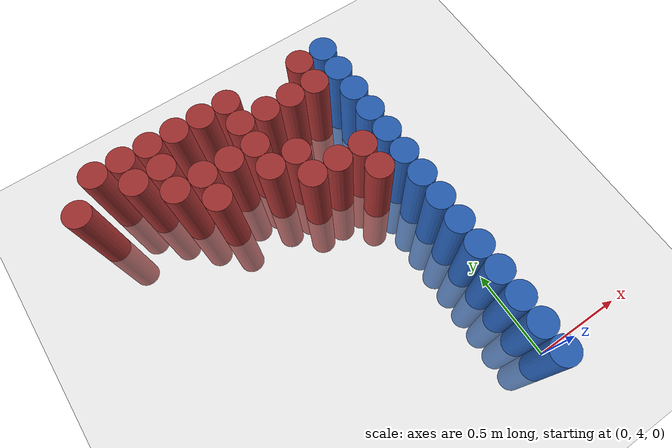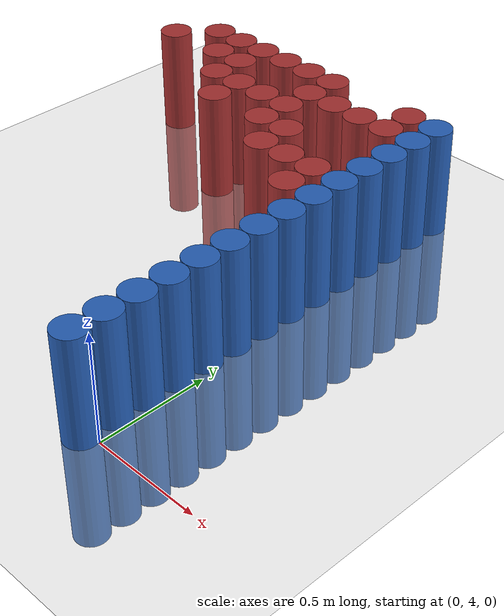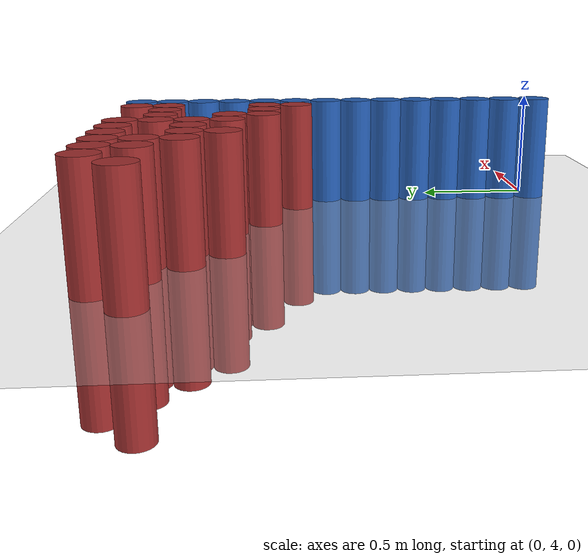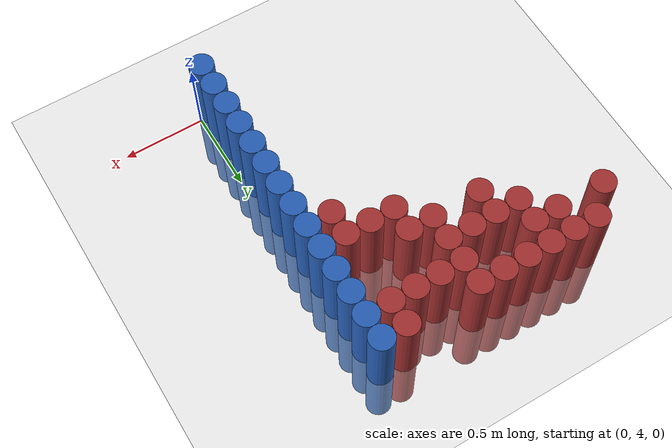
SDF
<sdf version="1.6">
 <world name="default">
  <model name="ground_plane">
   <static>1</static>
   <link name="link">
    <collision name="collision">
     <geometry><plane><normal>0 0 1</normal><size>100 100</size></plane></geometry>
     <surface><friction><ode><mu>100</mu><mu2>50</mu2></ode></friction></surface>
    </collision>
    <visual name="visual">
     <cast_shadows>0</cast_shadows>
     <geometry><plane><normal>0 0 1</normal><size>100 100</size></plane></geometry>
     <material>
      <script><uri>file://media/materials/scripts/gazebo.material</uri><name>Gazebo/Grey</name></script>
     </material>
    </visual>
   </link>
  </model>
  <model name="unit_cylinder_80">
   <static>1</static>
   <pose>-0.075000 3.975000 0.000000 0.000000 0.000000 0.000000</pose>
   <link name="link">
    <inertial>
     <mass>1</mass>
     <inertia><ixx>0.145833</ixx><ixy>0</ixy><ixz>0</ixz><iyy>0.145833</iyy><iyz>0</iyz><izz>0.125</izz></inertia>
    </inertial>
    <collision name="collision">
     <geometry><cylinder><radius>0.075000</radius><length>1</length></cylinder></geometry>
    </collision>
    <visual name="visual">
     <geometry><cylinder><radius>0.075000</radius><length>1</length></cylinder></geometry>
     <material>
      <ambient>0.152000 0.379000 0.720000 1</ambient>
      <diffuse>0.152000 0.379000 0.720000 1</diffuse>
     </material>
     <material>
      <script><name>Gazebo/Grey</name><uri>file://media/materials/scripts/gazebo.material</uri></script>
     </material>
    </visual>
    <sensor name="sensor_contact" type="contact"><contact><collision>collision</collision></contact></sensor>
   </link>
   <plugin filename="gz-sim-touchplugin-system" name="gz::sim::systems::TouchPlugin">
    <target>robot</target>
    <namespace>robot</namespace>
    <time>0.001</time>
    <enabled>true</enabled>
   </plugin>
  </model>
  <model name="unit_cylinder_82">
   <static>1</static>
   <pose>-0.075000 4.125000 0.000000 0.000000 0.000000 0.000000</pose>
   <link name="link">
    <inertial>
     <mass>1</mass>
     <inertia><ixx>0.145833</ixx><ixy>0</ixy><ixz>0</ixz><iyy>0.145833</iyy><iyz>0</iyz><izz>0.125</izz></inertia>
    </inertial>
    <collision name="collision">
     <geometry><cylinder><radius>0.075000</radius><length>1</length></cylinder></geometry>
    </collision>
    <visual name="visual">
     <geometry><cylinder><radius>0.075000</radius><length>1</length></cylinder></geometry>
     <material>
      <ambient>0.152000 0.379000 0.720000 1</ambient>
      <diffuse>0.152000 0.379000 0.720000 1</diffuse>
     </material>
     <material>
      <script><name>Gazebo/Grey</name><uri>file://media/materials/scripts/gazebo.material</uri></script>
     </material>
    </visual>
    <sensor name="sensor_contact" type="contact"><contact><collision>collision</collision></contact></sensor>
   </link>
   <plugin filename="gz-sim-touchplugin-system" name="gz::sim::systems::TouchPlugin">
    <target>robot</target>
    <namespace>robot</namespace>
    <time>0.001</time>
    <enabled>true</enabled>
   </plugin>
  </model>
  <model name="unit_cylinder_84">
   <static>1</static>
   <pose>-0.075000 4.275000 0.000000 0.000000 0.000000 0.000000</pose>
   <link name="link">
    <inertial>
     <mass>1</mass>
     <inertia><ixx>0.145833</ixx><ixy>0</ixy><ixz>0</ixz><iyy>0.145833</iyy><iyz>0</iyz><izz>0.125</izz></inertia>
    </inertial>
    <collision name="collision">
     <geometry><cylinder><radius>0.075000</radius><length>1</length></cylinder></geometry>
    </collision>
    <visual name="visual">
     <geometry><cylinder><radius>0.075000</radius><length>1</length></cylinder></geometry>
     <material>
      <ambient>0.152000 0.379000 0.720000 1</ambient>
      <diffuse>0.152000 0.379000 0.720000 1</diffuse>
     </material>
     <material>
      <script><name>Gazebo/Grey</name><uri>file://media/materials/scripts/gazebo.material</uri></script>
     </material>
    </visual>
    <sensor name="sensor_contact" type="contact"><contact><collision>collision</collision></contact></sensor>
   </link>
   <plugin filename="gz-sim-touchplugin-system" name="gz::sim::systems::TouchPlugin">
    <target>robot</target>
    <namespace>robot</namespace>
    <time>0.001</time>
    <enabled>true</enabled>
   </plugin>
  </model>
  <model name="unit_cylinder_86">
   <static>1</static>
   <pose>-0.075000 4.425000 0.000000 0.000000 0.000000 0.000000</pose>
   <link name="link">
    <inertial>
     <mass>1</mass>
     <inertia><ixx>0.145833</ixx><ixy>0</ixy><ixz>0</ixz><iyy>0.145833</iyy><iyz>0</iyz><izz>0.125</izz></inertia>
    </inertial>
    <collision name="collision">
     <geometry><cylinder><radius>0.075000</radius><length>1</length></cylinder></geometry>
    </collision>
    <visual name="visual">
     <geometry><cylinder><radius>0.075000</radius><length>1</length></cylinder></geometry>
     <material>
      <ambient>0.152000 0.379000 0.720000 1</ambient>
      <diffuse>0.152000 0.379000 0.720000 1</diffuse>
     </material>
     <material>
      <script><name>Gazebo/Grey</name><uri>file://media/materials/scripts/gazebo.material</uri></script>
     </material>
    </visual>
    <sensor name="sensor_contact" type="contact"><contact><collision>collision</collision></contact></sensor>
   </link>
   <plugin filename="gz-sim-touchplugin-system" name="gz::sim::systems::TouchPlugin">
    <target>robot</target>
    <namespace>robot</namespace>
    <time>0.001</time>
    <enabled>true</enabled>
   </plugin>
  </model>
  <model name="unit_cylinder_88">
   <static>1</static>
   <pose>-0.075000 4.575000 0.000000 0.000000 0.000000 0.000000</pose>
   <link name="link">
    <inertial>
     <mass>1</mass>
     <inertia><ixx>0.145833</ixx><ixy>0</ixy><ixz>0</ixz><iyy>0.145833</iyy><iyz>0</iyz><izz>0.125</izz></inertia>
    </inertial>
    <collision name="collision">
     <geometry><cylinder><radius>0.075000</radius><length>1</length></cylinder></geometry>
    </collision>
    <visual name="visual">
     <geometry><cylinder><radius>0.075000</radius><length>1</length></cylinder></geometry>
     <material>
      <ambient>0.152000 0.379000 0.720000 1</ambient>
      <diffuse>0.152000 0.379000 0.720000 1</diffuse>
     </material>
     <material>
      <script><name>Gazebo/Grey</name><uri>file://media/materials/scripts/gazebo.material</uri></script>
     </material>
    </visual>
    <sensor name="sensor_contact" type="contact"><contact><collision>collision</collision></contact></sensor>
   </link>
   <plugin filename="gz-sim-touchplugin-system" name="gz::sim::systems::TouchPlugin">
    <target>robot</target>
    <namespace>robot</namespace>
    <time>0.001</time>
    <enabled>true</enabled>
   </plugin>
  </model>
  <model name="unit_cylinder_90">
   <static>1</static>
   <pose>-0.075000 4.725000 0.000000 0.000000 0.000000 0.000000</pose>
   <link name="link">
    <inertial>
     <mass>1</mass>
     <inertia><ixx>0.145833</ixx><ixy>0</ixy><ixz>0</ixz><iyy>0.145833</iyy><iyz>0</iyz><izz>0.125</izz></inertia>
    </inertial>
    <collision name="collision">
     <geometry><cylinder><radius>0.075000</radius><length>1</length></cylinder></geometry>
    </collision>
    <visual name="visual">
     <geometry><cylinder><radius>0.075000</radius><length>1</length></cylinder></geometry>
     <material>
      <ambient>0.152000 0.379000 0.720000 1</ambient>
      <diffuse>0.152000 0.379000 0.720000 1</diffuse>
     </material>
     <material>
      <script><name>Gazebo/Grey</name><uri>file://media/materials/scripts/gazebo.material</uri></script>
     </material>
    </visual>
    <sensor name="sensor_contact" type="contact"><contact><collision>collision</collision></contact></sensor>
   </link>
   <plugin filename="gz-sim-touchplugin-system" name="gz::sim::systems::TouchPlugin">
    <target>robot</target>
    <namespace>robot</namespace>
    <time>0.001</time>
    <enabled>true</enabled>
   </plugin>
  </model>
  <model name="unit_cylinder_92">
   <static>1</static>
   <pose>-0.075000 4.875000 0.000000 0.000000 0.000000 0.000000</pose>
   <link name="link">
    <inertial>
     <mass>1</mass>
     <inertia><ixx>0.145833</ixx><ixy>0</ixy><ixz>0</ixz><iyy>0.145833</iyy><iyz>0</iyz><izz>0.125</izz></inertia>
    </inertial>
    <collision name="collision">
     <geometry><cylinder><radius>0.075000</radius><length>1</length></cylinder></geometry>
    </collision>
    <visual name="visual">
     <geometry><cylinder><radius>0.075000</radius><length>1</length></cylinder></geometry>
     <material>
      <ambient>0.152000 0.379000 0.720000 1</ambient>
      <diffuse>0.152000 0.379000 0.720000 1</diffuse>
     </material>
     <material>
      <script><name>Gazebo/Grey</name><uri>file://media/materials/scripts/gazebo.material</uri></script>
     </material>
    </visual>
    <sensor name="sensor_contact" type="contact"><contact><collision>collision</collision></contact></sensor>
   </link>
   <plugin filename="gz-sim-touchplugin-system" name="gz::sim::systems::TouchPlugin">
    <target>robot</target>
    <namespace>robot</namespace>
    <time>0.001</time>
    <enabled>true</enabled>
   </plugin>
  </model>
  <model name="unit_cylinder_94">
   <static>1</static>
   <pose>-0.075000 5.025000 0.000000 0.000000 0.000000 0.000000</pose>
   <link name="link">
    <inertial>
     <mass>1</mass>
     <inertia><ixx>0.145833</ixx><ixy>0</ixy><ixz>0</ixz><iyy>0.145833</iyy><iyz>0</iyz><izz>0.125</izz></inertia>
    </inertial>
    <collision name="collision">
     <geometry><cylinder><radius>0.075000</radius><length>1</length></cylinder></geometry>
    </collision>
    <visual name="visual">
     <geometry><cylinder><radius>0.075000</radius><length>1</length></cylinder></geometry>
     <material>
      <ambient>0.152000 0.379000 0.720000 1</ambient>
      <diffuse>0.152000 0.379000 0.720000 1</diffuse>
     </material>
     <material>
      <script><name>Gazebo/Grey</name><uri>file://media/materials/scripts/gazebo.material</uri></script>
     </material>
    </visual>
    <sensor name="sensor_contact" type="contact"><contact><collision>collision</collision></contact></sensor>
   </link>
   <plugin filename="gz-sim-touchplugin-system" name="gz::sim::systems::TouchPlugin">
    <target>robot</target>
    <namespace>robot</namespace>
    <time>0.001</time>
    <enabled>true</enabled>
   </plugin>
  </model>
  <model name="unit_cylinder_237">
   <static>1</static>
   <pose>-1.575000 5.775000 0.000000 0.000000 0.000000 0.000000</pose>
   <link name="link">
    <inertial>
     <mass>1</mass>
     <inertia><ixx>0.145833</ixx><ixy>0</ixy><ixz>0</ixz><iyy>0.145833</iyy><iyz>0</iyz><izz>0.125</izz></inertia>
    </inertial>
    <collision name="collision">
     <geometry><cylinder><radius>0.075000</radius><length>1</length></cylinder></geometry>
    </collision>
    <visual name="visual">
     <geometry><cylinder><radius>0.075000</radius><length>1</length></cylinder></geometry>
     <material>
      <ambient>0.648000 0.192000 0.192000 1</ambient>
      <diffuse>0.648000 0.192000 0.192000 1</diffuse>
     </material>
     <material>
      <script><name>Gazebo/Grey</name><uri>file://media/materials/scripts/gazebo.material</uri></script>
     </material>
    </visual>
    <sensor name="sensor_contact" type="contact"><contact><collision>collision</collision></contact></sensor>
   </link>
   <plugin filename="gz-sim-touchplugin-system" name="gz::sim::systems::TouchPlugin">
    <target>robot</target>
    <namespace>robot</namespace>
    <time>0.001</time>
    <enabled>true</enabled>
   </plugin>
  </model>
  <model name="unit_cylinder_243">
   <static>1</static>
   <pose>-1.425000 5.925000 0.000000 0.000000 0.000000 0.000000</pose>
   <link name="link">
    <inertial>
     <mass>1</mass>
     <inertia><ixx>0.145833</ixx><ixy>0</ixy><ixz>0</ixz><iyy>0.145833</iyy><iyz>0</iyz><izz>0.125</izz></inertia>
    </inertial>
    <collision name="collision">
     <geometry><cylinder><radius>0.075000</radius><length>1</length></cylinder></geometry>
    </collision>
    <visual name="visual">
     <geometry><cylinder><radius>0.075000</radius><length>1</length></cylinder></geometry>
     <material>
      <ambient>0.648000 0.192000 0.192000 1</ambient>
      <diffuse>0.648000 0.192000 0.192000 1</diffuse>
     </material>
     <material>
      <script><name>Gazebo/Grey</name><uri>file://media/materials/scripts/gazebo.material</uri></script>
     </material>
    </visual>
    <sensor name="sensor_contact" type="contact"><contact><collision>collision</collision></contact></sensor>
   </link>
   <plugin filename="gz-sim-touchplugin-system" name="gz::sim::systems::TouchPlugin">
    <target>robot</target>
    <namespace>robot</namespace>
    <time>0.001</time>
    <enabled>true</enabled>
   </plugin>
  </model>
  <model name="unit_cylinder_254">
   <static>1</static>
   <pose>-1.275000 5.775000 0.000000 0.000000 0.000000 0.000000</pose>
   <link name="link">
    <inertial>
     <mass>1</mass>
     <inertia><ixx>0.145833</ixx><ixy>0</ixy><ixz>0</ixz><iyy>0.145833</iyy><iyz>0</iyz><izz>0.125</izz></inertia>
    </inertial>
    <collision name="collision">
     <geometry><cylinder><radius>0.075000</radius><length>1</length></cylinder></geometry>
    </collision>
    <visual name="visual">
     <geometry><cylinder><radius>0.075000</radius><length>1</length></cylinder></geometry>
     <material>
      <ambient>0.648000 0.192000 0.192000 1</ambient>
      <diffuse>0.648000 0.192000 0.192000 1</diffuse>
     </material>
     <material>
      <script><name>Gazebo/Grey</name><uri>file://media/materials/scripts/gazebo.material</uri></script>
     </material>
    </visual>
    <sensor name="sensor_contact" type="contact"><contact><collision>collision</collision></contact></sensor>
   </link>
   <plugin filename="gz-sim-touchplugin-system" name="gz::sim::systems::TouchPlugin">
    <target>robot</target>
    <namespace>robot</namespace>
    <time>0.001</time>
    <enabled>true</enabled>
   </plugin>
  </model>
  <model name="unit_cylinder_255">
   <static>1</static>
   <pose>-1.275000 5.925000 0.000000 0.000000 0.000000 0.000000</pose>
   <link name="link">
    <inertial>
     <mass>1</mass>
     <inertia><ixx>0.145833</ixx><ixy>0</ixy><ixz>0</ixz><iyy>0.145833</iyy><iyz>0</iyz><izz>0.125</izz></inertia>
    </inertial>
    <collision name="collision">
     <geometry><cylinder><radius>0.075000</radius><length>1</length></cylinder></geometry>
    </collision>
    <visual name="visual">
     <geometry><cylinder><radius>0.075000</radius><length>1</length></cylinder></geometry>
     <material>
      <ambient>0.648000 0.192000 0.192000 1</ambient>
      <diffuse>0.648000 0.192000 0.192000 1</diffuse>
     </material>
     <material>
      <script><name>Gazebo/Grey</name><uri>file://media/materials/scripts/gazebo.material</uri></script>
     </material>
    </visual>
    <sensor name="sensor_contact" type="contact"><contact><collision>collision</collision></contact></sensor>
   </link>
   <plugin filename="gz-sim-touchplugin-system" name="gz::sim::systems::TouchPlugin">
    <target>robot</target>
    <namespace>robot</namespace>
    <time>0.001</time>
    <enabled>true</enabled>
   </plugin>
  </model>
  <model name="unit_cylinder_266">
   <static>1</static>
   <pose>-1.125000 5.625000 0.000000 0.000000 0.000000 0.000000</pose>
   <link name="link">
    <inertial>
     <mass>1</mass>
     <inertia><ixx>0.145833</ixx><ixy>0</ixy><ixz>0</ixz><iyy>0.145833</iyy><iyz>0</iyz><izz>0.125</izz></inertia>
    </inertial>
    <collision name="collision">
     <geometry><cylinder><radius>0.075000</radius><length>1</length></cylinder></geometry>
    </collision>
    <visual name="visual">
     <geometry><cylinder><radius>0.075000</radius><length>1</length></cylinder></geometry>
     <material>
      <ambient>0.648000 0.192000 0.192000 1</ambient>
      <diffuse>0.648000 0.192000 0.192000 1</diffuse>
     </material>
     <material>
      <script><name>Gazebo/Grey</name><uri>file://media/materials/scripts/gazebo.material</uri></script>
     </material>
    </visual>
    <sensor name="sensor_contact" type="contact"><contact><collision>collision</collision></contact></sensor>
   </link>
   <plugin filename="gz-sim-touchplugin-system" name="gz::sim::systems::TouchPlugin">
    <target>robot</target>
    <namespace>robot</namespace>
    <time>0.001</time>
    <enabled>true</enabled>
   </plugin>
  </model>
  <model name="unit_cylinder_267">
   <static>1</static>
   <pose>-1.125000 5.775000 0.000000 0.000000 0.000000 0.000000</pose>
   <link name="link">
    <inertial>
     <mass>1</mass>
     <inertia><ixx>0.145833</ixx><ixy>0</ixy><ixz>0</ixz><iyy>0.145833</iyy><iyz>0</iyz><izz>0.125</izz></inertia>
    </inertial>
    <collision name="collision">
     <geometry><cylinder><radius>0.075000</radius><length>1</length></cylinder></geometry>
    </collision>
    <visual name="visual">
     <geometry><cylinder><radius>0.075000</radius><length>1</length></cylinder></geometry>
     <material>
      <ambient>0.648000 0.192000 0.192000 1</ambient>
      <diffuse>0.648000 0.192000 0.192000 1</diffuse>
     </material>
     <material>
      <script><name>Gazebo/Grey</name><uri>file://media/materials/scripts/gazebo.material</uri></script>
     </material>
    </visual>
    <sensor name="sensor_contact" type="contact"><contact><collision>collision</collision></contact></sensor>
   </link>
   <plugin filename="gz-sim-touchplugin-system" name="gz::sim::systems::TouchPlugin">
    <target>robot</target>
    <namespace>robot</namespace>
    <time>0.001</time>
    <enabled>true</enabled>
   </plugin>
  </model>
  <model name="unit_cylinder_268">
   <static>1</static>
   <pose>-1.125000 5.925000 0.000000 0.000000 0.000000 0.000000</pose>
   <link name="link">
    <inertial>
     <mass>1</mass>
     <inertia><ixx>0.145833</ixx><ixy>0</ixy><ixz>0</ixz><iyy>0.145833</iyy><iyz>0</iyz><izz>0.125</izz></inertia>
    </inertial>
    <collision name="collision">
     <geometry><cylinder><radius>0.075000</radius><length>1</length></cylinder></geometry>
    </collision>
    <visual name="visual">
     <geometry><cylinder><radius>0.075000</radius><length>1</length></cylinder></geometry>
     <material>
      <ambient>0.648000 0.192000 0.192000 1</ambient>
      <diffuse>0.648000 0.192000 0.192000 1</diffuse>
     </material>
     <material>
      <script><name>Gazebo/Grey</name><uri>file://media/materials/scripts/gazebo.material</uri></script>
     </material>
    </visual>
    <sensor name="sensor_contact" type="contact"><contact><collision>collision</collision></contact></sensor>
   </link>
   <plugin filename="gz-sim-touchplugin-system" name="gz::sim::systems::TouchPlugin">
    <target>robot</target>
    <namespace>robot</namespace>
    <time>0.001</time>
    <enabled>true</enabled>
   </plugin>
  </model>
  <model name="unit_cylinder_277">
   <static>1</static>
   <pose>-0.975000 5.475000 0.000000 0.000000 0.000000 0.000000</pose>
   <link name="link">
    <inertial>
     <mass>1</mass>
     <inertia><ixx>0.145833</ixx><ixy>0</ixy><ixz>0</ixz><iyy>0.145833</iyy><iyz>0</iyz><izz>0.125</izz></inertia>
    </inertial>
    <collision name="collision">
     <geometry><cylinder><radius>0.075000</radius><length>1</length></cylinder></geometry>
    </collision>
    <visual name="visual">
     <geometry><cylinder><radius>0.075000</radius><length>1</length></cylinder></geometry>
     <material>
      <ambient>0.648000 0.192000 0.192000 1</ambient>
      <diffuse>0.648000 0.192000 0.192000 1</diffuse>
     </material>
     <material>
      <script><name>Gazebo/Grey</name><uri>file://media/materials/scripts/gazebo.material</uri></script>
     </material>
    </visual>
    <sensor name="sensor_contact" type="contact"><contact><collision>collision</collision></contact></sensor>
   </link>
   <plugin filename="gz-sim-touchplugin-system" name="gz::sim::systems::TouchPlugin">
    <target>robot</target>
    <namespace>robot</namespace>
    <time>0.001</time>
    <enabled>true</enabled>
   </plugin>
  </model>
  <model name="unit_cylinder_278">
   <static>1</static>
   <pose>-0.975000 5.625000 0.000000 0.000000 0.000000 0.000000</pose>
   <link name="link">
    <inertial>
     <mass>1</mass>
     <inertia><ixx>0.145833</ixx><ixy>0</ixy><ixz>0</ixz><iyy>0.145833</iyy><iyz>0</iyz><izz>0.125</izz></inertia>
    </inertial>
    <collision name="collision">
     <geometry><cylinder><radius>0.075000</radius><length>1</length></cylinder></geometry>
    </collision>
    <visual name="visual">
     <geometry><cylinder><radius>0.075000</radius><length>1</length></cylinder></geometry>
     <material>
      <ambient>0.648000 0.192000 0.192000 1</ambient>
      <diffuse>0.648000 0.192000 0.192000 1</diffuse>
     </material>
     <material>
      <script><name>Gazebo/Grey</name><uri>file://media/materials/scripts/gazebo.material</uri></script>
     </material>
    </visual>
    <sensor name="sensor_contact" type="contact"><contact><collision>collision</collision></contact></sensor>
   </link>
   <plugin filename="gz-sim-touchplugin-system" name="gz::sim::systems::TouchPlugin">
    <target>robot</target>
    <namespace>robot</namespace>
    <time>0.001</time>
    <enabled>true</enabled>
   </plugin>
  </model>
  <model name="unit_cylinder_279">
   <static>1</static>
   <pose>-0.975000 5.925000 0.000000 0.000000 0.000000 0.000000</pose>
   <link name="link">
    <inertial>
     <mass>1</mass>
     <inertia><ixx>0.145833</ixx><ixy>0</ixy><ixz>0</ixz><iyy>0.145833</iyy><iyz>0</iyz><izz>0.125</izz></inertia>
    </inertial>
    <collision name="collision">
     <geometry><cylinder><radius>0.075000</radius><length>1</length></cylinder></geometry>
    </collision>
    <visual name="visual">
     <geometry><cylinder><radius>0.075000</radius><length>1</length></cylinder></geometry>
     <material>
      <ambient>0.648000 0.192000 0.192000 1</ambient>
      <diffuse>0.648000 0.192000 0.192000 1</diffuse>
     </material>
     <material>
      <script><name>Gazebo/Grey</name><uri>file://media/materials/scripts/gazebo.material</uri></script>
     </material>
    </visual>
    <sensor name="sensor_contact" type="contact"><contact><collision>collision</collision></contact></sensor>
   </link>
   <plugin filename="gz-sim-touchplugin-system" name="gz::sim::systems::TouchPlugin">
    <target>robot</target>
    <namespace>robot</namespace>
    <time>0.001</time>
    <enabled>true</enabled>
   </plugin>
  </model>
  <model name="unit_cylinder_282">
   <static>1</static>
   <pose>-0.825000 5.625000 0.000000 0.000000 0.000000 0.000000</pose>
   <link name="link">
    <inertial>
     <mass>1</mass>
     <inertia><ixx>0.145833</ixx><ixy>0</ixy><ixz>0</ixz><iyy>0.145833</iyy><iyz>0</iyz><izz>0.125</izz></inertia>
    </inertial>
    <collision name="collision">
     <geometry><cylinder><radius>0.075000</radius><length>1</length></cylinder></geometry>
    </collision>
    <visual name="visual">
     <geometry><cylinder><radius>0.075000</radius><length>1</length></cylinder></geometry>
     <material>
      <ambient>0.648000 0.192000 0.192000 1</ambient>
      <diffuse>0.648000 0.192000 0.192000 1</diffuse>
     </material>
     <material>
      <script><name>Gazebo/Grey</name><uri>file://media/materials/scripts/gazebo.material</uri></script>
     </material>
    </visual>
    <sensor name="sensor_contact" type="contact"><contact><collision>collision</collision></contact></sensor>
   </link>
   <plugin filename="gz-sim-touchplugin-system" name="gz::sim::systems::TouchPlugin">
    <target>robot</target>
    <namespace>robot</namespace>
    <time>0.001</time>
    <enabled>true</enabled>
   </plugin>
  </model>
  <model name="unit_cylinder_283">
   <static>1</static>
   <pose>-0.825000 5.925000 0.000000 0.000000 0.000000 0.000000</pose>
   <link name="link">
    <inertial>
     <mass>1</mass>
     <inertia><ixx>0.145833</ixx><ixy>0</ixy><ixz>0</ixz><iyy>0.145833</iyy><iyz>0</iyz><izz>0.125</izz></inertia>
    </inertial>
    <collision name="collision">
     <geometry><cylinder><radius>0.075000</radius><length>1</length></cylinder></geometry>
    </collision>
    <visual name="visual">
     <geometry><cylinder><radius>0.075000</radius><length>1</length></cylinder></geometry>
     <material>
      <ambient>0.648000 0.192000 0.192000 1</ambient>
      <diffuse>0.648000 0.192000 0.192000 1</diffuse>
     </material>
     <material>
      <script><name>Gazebo/Grey</name><uri>file://media/materials/scripts/gazebo.material</uri></script>
     </material>
    </visual>
    <sensor name="sensor_contact" type="contact"><contact><collision>collision</collision></contact></sensor>
   </link>
   <plugin filename="gz-sim-touchplugin-system" name="gz::sim::systems::TouchPlugin">
    <target>robot</target>
    <namespace>robot</namespace>
    <time>0.001</time>
    <enabled>true</enabled>
   </plugin>
  </model>
  <model name="unit_cylinder_286">
   <static>1</static>
   <pose>-0.675000 5.475000 0.000000 0.000000 0.000000 0.000000</pose>
   <link name="link">
    <inertial>
     <mass>1</mass>
     <inertia><ixx>0.145833</ixx><ixy>0</ixy><ixz>0</ixz><iyy>0.145833</iyy><iyz>0</iyz><izz>0.125</izz></inertia>
    </inertial>
    <collision name="collision">
     <geometry><cylinder><radius>0.075000</radius><length>1</length></cylinder></geometry>
    </collision>
    <visual name="visual">
     <geometry><cylinder><radius>0.075000</radius><length>1</length></cylinder></geometry>
     <material>
      <ambient>0.648000 0.192000 0.192000 1</ambient>
      <diffuse>0.648000 0.192000 0.192000 1</diffuse>
     </material>
     <material>
      <script><name>Gazebo/Grey</name><uri>file://media/materials/scripts/gazebo.material</uri></script>
     </material>
    </visual>
    <sensor name="sensor_contact" type="contact"><contact><collision>collision</collision></contact></sensor>
   </link>
   <plugin filename="gz-sim-touchplugin-system" name="gz::sim::systems::TouchPlugin">
    <target>robot</target>
    <namespace>robot</namespace>
    <time>0.001</time>
    <enabled>true</enabled>
   </plugin>
  </model>
  <model name="unit_cylinder_287">
   <static>1</static>
   <pose>-0.675000 5.625000 0.000000 0.000000 0.000000 0.000000</pose>
   <link name="link">
    <inertial>
     <mass>1</mass>
     <inertia><ixx>0.145833</ixx><ixy>0</ixy><ixz>0</ixz><iyy>0.145833</iyy><iyz>0</iyz><izz>0.125</izz></inertia>
    </inertial>
    <collision name="collision">
     <geometry><cylinder><radius>0.075000</radius><length>1</length></cylinder></geometry>
    </collision>
    <visual name="visual">
     <geometry><cylinder><radius>0.075000</radius><length>1</length></cylinder></geometry>
     <material>
      <ambient>0.648000 0.192000 0.192000 1</ambient>
      <diffuse>0.648000 0.192000 0.192000 1</diffuse>
     </material>
     <material>
      <script><name>Gazebo/Grey</name><uri>file://media/materials/scripts/gazebo.material</uri></script>
     </material>
    </visual>
    <sensor name="sensor_contact" type="contact"><contact><collision>collision</collision></contact></sensor>
   </link>
   <plugin filename="gz-sim-touchplugin-system" name="gz::sim::systems::TouchPlugin">
    <target>robot</target>
    <namespace>robot</namespace>
    <time>0.001</time>
    <enabled>true</enabled>
   </plugin>
  </model>
  <model name="unit_cylinder_288">
   <static>1</static>
   <pose>-0.675000 5.775000 0.000000 0.000000 0.000000 0.000000</pose>
   <link name="link">
    <inertial>
     <mass>1</mass>
     <inertia><ixx>0.145833</ixx><ixy>0</ixy><ixz>0</ixz><iyy>0.145833</iyy><iyz>0</iyz><izz>0.125</izz></inertia>
    </inertial>
    <collision name="collision">
     <geometry><cylinder><radius>0.075000</radius><length>1</length></cylinder></geometry>
    </collision>
    <visual name="visual">
     <geometry><cylinder><radius>0.075000</radius><length>1</length></cylinder></geometry>
     <material>
      <ambient>0.648000 0.192000 0.192000 1</ambient>
      <diffuse>0.648000 0.192000 0.192000 1</diffuse>
     </material>
     <material>
      <script><name>Gazebo/Grey</name><uri>file://media/materials/scripts/gazebo.material</uri></script>
     </material>
    </visual>
    <sensor name="sensor_contact" type="contact"><contact><collision>collision</collision></contact></sensor>
   </link>
   <plugin filename="gz-sim-touchplugin-system" name="gz::sim::systems::TouchPlugin">
    <target>robot</target>
    <namespace>robot</namespace>
    <time>0.001</time>
    <enabled>true</enabled>
   </plugin>
  </model>
  <model name="unit_cylinder_289">
   <static>1</static>
   <pose>-0.675000 5.925000 0.000000 0.000000 0.000000 0.000000</pose>
   <link name="link">
    <inertial>
     <mass>1</mass>
     <inertia><ixx>0.145833</ixx><ixy>0</ixy><ixz>0</ixz><iyy>0.145833</iyy><iyz>0</iyz><izz>0.125</izz></inertia>
    </inertial>
    <collision name="collision">
     <geometry><cylinder><radius>0.075000</radius><length>1</length></cylinder></geometry>
    </collision>
    <visual name="visual">
     <geometry><cylinder><radius>0.075000</radius><length>1</length></cylinder></geometry>
     <material>
      <ambient>0.648000 0.192000 0.192000 1</ambient>
      <diffuse>0.648000 0.192000 0.192000 1</diffuse>
     </material>
     <material>
      <script><name>Gazebo/Grey</name><uri>file://media/materials/scripts/gazebo.material</uri></script>
     </material>
    </visual>
    <sensor name="sensor_contact" type="contact"><contact><collision>collision</collision></contact></sensor>
   </link>
   <plugin filename="gz-sim-touchplugin-system" name="gz::sim::systems::TouchPlugin">
    <target>robot</target>
    <namespace>robot</namespace>
    <time>0.001</time>
    <enabled>true</enabled>
   </plugin>
  </model>
  <model name="unit_cylinder_293">
   <static>1</static>
   <pose>-0.525000 5.325000 0.000000 0.000000 0.000000 0.000000</pose>
   <link name="link">
    <inertial>
     <mass>1</mass>
     <inertia><ixx>0.145833</ixx><ixy>0</ixy><ixz>0</ixz><iyy>0.145833</iyy><iyz>0</iyz><izz>0.125</izz></inertia>
    </inertial>
    <collision name="collision">
     <geometry><cylinder><radius>0.075000</radius><length>1</length></cylinder></geometry>
    </collision>
    <visual name="visual">
     <geometry><cylinder><radius>0.075000</radius><length>1</length></cylinder></geometry>
     <material>
      <ambient>0.648000 0.192000 0.192000 1</ambient>
      <diffuse>0.648000 0.192000 0.192000 1</diffuse>
     </material>
     <material>
      <script><name>Gazebo/Grey</name><uri>file://media/materials/scripts/gazebo.material</uri></script>
     </material>
    </visual>
    <sensor name="sensor_contact" type="contact"><contact><collision>collision</collision></contact></sensor>
   </link>
   <plugin filename="gz-sim-touchplugin-system" name="gz::sim::systems::TouchPlugin">
    <target>robot</target>
    <namespace>robot</namespace>
    <time>0.001</time>
    <enabled>true</enabled>
   </plugin>
  </model>
  <model name="unit_cylinder_294">
   <static>1</static>
   <pose>-0.525000 5.475000 0.000000 0.000000 0.000000 0.000000</pose>
   <link name="link">
    <inertial>
     <mass>1</mass>
     <inertia><ixx>0.145833</ixx><ixy>0</ixy><ixz>0</ixz><iyy>0.145833</iyy><iyz>0</iyz><izz>0.125</izz></inertia>
    </inertial>
    <collision name="collision">
     <geometry><cylinder><radius>0.075000</radius><length>1</length></cylinder></geometry>
    </collision>
    <visual name="visual">
     <geometry><cylinder><radius>0.075000</radius><length>1</length></cylinder></geometry>
     <material>
      <ambient>0.648000 0.192000 0.192000 1</ambient>
      <diffuse>0.648000 0.192000 0.192000 1</diffuse>
     </material>
     <material>
      <script><name>Gazebo/Grey</name><uri>file://media/materials/scripts/gazebo.material</uri></script>
     </material>
    </visual>
    <sensor name="sensor_contact" type="contact"><contact><collision>collision</collision></contact></sensor>
   </link>
   <plugin filename="gz-sim-touchplugin-system" name="gz::sim::systems::TouchPlugin">
    <target>robot</target>
    <namespace>robot</namespace>
    <time>0.001</time>
    <enabled>true</enabled>
   </plugin>
  </model>
  <model name="unit_cylinder_295">
   <static>1</static>
   <pose>-0.525000 5.775000 0.000000 0.000000 0.000000 0.000000</pose>
   <link name="link">
    <inertial>
     <mass>1</mass>
     <inertia><ixx>0.145833</ixx><ixy>0</ixy><ixz>0</ixz><iyy>0.145833</iyy><iyz>0</iyz><izz>0.125</izz></inertia>
    </inertial>
    <collision name="collision">
     <geometry><cylinder><radius>0.075000</radius><length>1</length></cylinder></geometry>
    </collision>
    <visual name="visual">
     <geometry><cylinder><radius>0.075000</radius><length>1</length></cylinder></geometry>
     <material>
      <ambient>0.648000 0.192000 0.192000 1</ambient>
      <diffuse>0.648000 0.192000 0.192000 1</diffuse>
     </material>
     <material>
      <script><name>Gazebo/Grey</name><uri>file://media/materials/scripts/gazebo.material</uri></script>
     </material>
    </visual>
    <sensor name="sensor_contact" type="contact"><contact><collision>collision</collision></contact></sensor>
   </link>
   <plugin filename="gz-sim-touchplugin-system" name="gz::sim::systems::TouchPlugin">
    <target>robot</target>
    <namespace>robot</namespace>
    <time>0.001</time>
    <enabled>true</enabled>
   </plugin>
  </model>
  <model name="unit_cylinder_301">
   <static>1</static>
   <pose>-0.375000 5.325000 0.000000 0.000000 0.000000 0.000000</pose>
   <link name="link">
    <inertial>
     <mass>1</mass>
     <inertia><ixx>0.145833</ixx><ixy>0</ixy><ixz>0</ixz><iyy>0.145833</iyy><iyz>0</iyz><izz>0.125</izz></inertia>
    </inertial>
    <collision name="collision">
     <geometry><cylinder><radius>0.075000</radius><length>1</length></cylinder></geometry>
    </collision>
    <visual name="visual">
     <geometry><cylinder><radius>0.075000</radius><length>1</length></cylinder></geometry>
     <material>
      <ambient>0.648000 0.192000 0.192000 1</ambient>
      <diffuse>0.648000 0.192000 0.192000 1</diffuse>
     </material>
     <material>
      <script><name>Gazebo/Grey</name><uri>file://media/materials/scripts/gazebo.material</uri></script>
     </material>
    </visual>
    <sensor name="sensor_contact" type="contact"><contact><collision>collision</collision></contact></sensor>
   </link>
   <plugin filename="gz-sim-touchplugin-system" name="gz::sim::systems::TouchPlugin">
    <target>robot</target>
    <namespace>robot</namespace>
    <time>0.001</time>
    <enabled>true</enabled>
   </plugin>
  </model>
  <model name="unit_cylinder_302">
   <static>1</static>
   <pose>-0.375000 5.775000 0.000000 0.000000 0.000000 0.000000</pose>
   <link name="link">
    <inertial>
     <mass>1</mass>
     <inertia><ixx>0.145833</ixx><ixy>0</ixy><ixz>0</ixz><iyy>0.145833</iyy><iyz>0</iyz><izz>0.125</izz></inertia>
    </inertial>
    <collision name="collision">
     <geometry><cylinder><radius>0.075000</radius><length>1</length></cylinder></geometry>
    </collision>
    <visual name="visual">
     <geometry><cylinder><radius>0.075000</radius><length>1</length></cylinder></geometry>
     <material>
      <ambient>0.648000 0.192000 0.192000 1</ambient>
      <diffuse>0.648000 0.192000 0.192000 1</diffuse>
     </material>
     <material>
      <script><name>Gazebo/Grey</name><uri>file://media/materials/scripts/gazebo.material</uri></script>
     </material>
    </visual>
    <sensor name="sensor_contact" type="contact"><contact><collision>collision</collision></contact></sensor>
   </link>
   <plugin filename="gz-sim-touchplugin-system" name="gz::sim::systems::TouchPlugin">
    <target>robot</target>
    <namespace>robot</namespace>
    <time>0.001</time>
    <enabled>true</enabled>
   </plugin>
  </model>
  <model name="unit_cylinder_308">
   <static>1</static>
   <pose>-0.225000 5.175000 0.000000 0.000000 0.000000 0.000000</pose>
   <link name="link">
    <inertial>
     <mass>1</mass>
     <inertia><ixx>0.145833</ixx><ixy>0</ixy><ixz>0</ixz><iyy>0.145833</iyy><iyz>0</iyz><izz>0.125</izz></inertia>
    </inertial>
    <collision name="collision">
     <geometry><cylinder><radius>0.075000</radius><length>1</length></cylinder></geometry>
    </collision>
    <visual name="visual">
     <geometry><cylinder><radius>0.075000</radius><length>1</length></cylinder></geometry>
     <material>
      <ambient>0.648000 0.192000 0.192000 1</ambient>
      <diffuse>0.648000 0.192000 0.192000 1</diffuse>
     </material>
     <material>
      <script><name>Gazebo/Grey</name><uri>file://media/materials/scripts/gazebo.material</uri></script>
     </material>
    </visual>
    <sensor name="sensor_contact" type="contact"><contact><collision>collision</collision></contact></sensor>
   </link>
   <plugin filename="gz-sim-touchplugin-system" name="gz::sim::systems::TouchPlugin">
    <target>robot</target>
    <namespace>robot</namespace>
    <time>0.001</time>
    <enabled>true</enabled>
   </plugin>
  </model>
  <model name="unit_cylinder_309">
   <static>1</static>
   <pose>-0.225000 5.325000 0.000000 0.000000 0.000000 0.000000</pose>
   <link name="link">
    <inertial>
     <mass>1</mass>
     <inertia><ixx>0.145833</ixx><ixy>0</ixy><ixz>0</ixz><iyy>0.145833</iyy><iyz>0</iyz><izz>0.125</izz></inertia>
    </inertial>
    <collision name="collision">
     <geometry><cylinder><radius>0.075000</radius><length>1</length></cylinder></geometry>
    </collision>
    <visual name="visual">
     <geometry><cylinder><radius>0.075000</radius><length>1</length></cylinder></geometry>
     <material>
      <ambient>0.648000 0.192000 0.192000 1</ambient>
      <diffuse>0.648000 0.192000 0.192000 1</diffuse>
     </material>
     <material>
      <script><name>Gazebo/Grey</name><uri>file://media/materials/scripts/gazebo.material</uri></script>
     </material>
    </visual>
    <sensor name="sensor_contact" type="contact"><contact><collision>collision</collision></contact></sensor>
   </link>
   <plugin filename="gz-sim-touchplugin-system" name="gz::sim::systems::TouchPlugin">
    <target>robot</target>
    <namespace>robot</namespace>
    <time>0.001</time>
    <enabled>true</enabled>
   </plugin>
  </model>
  <model name="unit_cylinder_310">
   <static>1</static>
   <pose>-0.225000 5.775000 0.000000 0.000000 0.000000 0.000000</pose>
   <link name="link">
    <inertial>
     <mass>1</mass>
     <inertia><ixx>0.145833</ixx><ixy>0</ixy><ixz>0</ixz><iyy>0.145833</iyy><iyz>0</iyz><izz>0.125</izz></inertia>
    </inertial>
    <collision name="collision">
     <geometry><cylinder><radius>0.075000</radius><length>1</length></cylinder></geometry>
    </collision>
    <visual name="visual">
     <geometry><cylinder><radius>0.075000</radius><length>1</length></cylinder></geometry>
     <material>
      <ambient>0.648000 0.192000 0.192000 1</ambient>
      <diffuse>0.648000 0.192000 0.192000 1</diffuse>
     </material>
     <material>
      <script><name>Gazebo/Grey</name><uri>file://media/materials/scripts/gazebo.material</uri></script>
     </material>
    </visual>
    <sensor name="sensor_contact" type="contact"><contact><collision>collision</collision></contact></sensor>
   </link>
   <plugin filename="gz-sim-touchplugin-system" name="gz::sim::systems::TouchPlugin">
    <target>robot</target>
    <namespace>robot</namespace>
    <time>0.001</time>
    <enabled>true</enabled>
   </plugin>
  </model>
  <model name="unit_cylinder_311">
   <static>1</static>
   <pose>-0.225000 5.925000 0.000000 0.000000 0.000000 0.000000</pose>
   <link name="link">
    <inertial>
     <mass>1</mass>
     <inertia><ixx>0.145833</ixx><ixy>0</ixy><ixz>0</ixz><iyy>0.145833</iyy><iyz>0</iyz><izz>0.125</izz></inertia>
    </inertial>
    <collision name="collision">
     <geometry><cylinder><radius>0.075000</radius><length>1</length></cylinder></geometry>
    </collision>
    <visual name="visual">
     <geometry><cylinder><radius>0.075000</radius><length>1</length></cylinder></geometry>
     <material>
      <ambient>0.648000 0.192000 0.192000 1</ambient>
      <diffuse>0.648000 0.192000 0.192000 1</diffuse>
     </material>
     <material>
      <script><name>Gazebo/Grey</name><uri>file://media/materials/scripts/gazebo.material</uri></script>
     </material>
    </visual>
    <sensor name="sensor_contact" type="contact"><contact><collision>collision</collision></contact></sensor>
   </link>
   <plugin filename="gz-sim-touchplugin-system" name="gz::sim::systems::TouchPlugin">
    <target>robot</target>
    <namespace>robot</namespace>
    <time>0.001</time>
    <enabled>true</enabled>
   </plugin>
  </model>
  <model name="unit_cylinder_324">
   <static>1</static>
   <pose>-0.075000 5.175000 0.000000 0.000000 0.000000 0.000000</pose>
   <link name="link">
    <inertial>
     <mass>1</mass>
     <inertia><ixx>0.145833</ixx><ixy>0</ixy><ixz>0</ixz><iyy>0.145833</iyy><iyz>0</iyz><izz>0.125</izz></inertia>
    </inertial>
    <collision name="collision">
     <geometry><cylinder><radius>0.075000</radius><length>1</length></cylinder></geometry>
    </collision>
    <visual name="visual">
     <geometry><cylinder><radius>0.075000</radius><length>1</length></cylinder></geometry>
     <material>
      <ambient>0.152000 0.379000 0.720000 1</ambient>
      <diffuse>0.152000 0.379000 0.720000 1</diffuse>
     </material>
     <material>
      <script><name>Gazebo/Grey</name><uri>file://media/materials/scripts/gazebo.material</uri></script>
     </material>
    </visual>
    <sensor name="sensor_contact" type="contact"><contact><collision>collision</collision></contact></sensor>
   </link>
   <plugin filename="gz-sim-touchplugin-system" name="gz::sim::systems::TouchPlugin">
    <target>robot</target>
    <namespace>robot</namespace>
    <time>0.001</time>
    <enabled>true</enabled>
   </plugin>
  </model>
  <model name="unit_cylinder_325">
   <static>1</static>
   <pose>-0.075000 5.325000 0.000000 0.000000 0.000000 0.000000</pose>
   <link name="link">
    <inertial>
     <mass>1</mass>
     <inertia><ixx>0.145833</ixx><ixy>0</ixy><ixz>0</ixz><iyy>0.145833</iyy><iyz>0</iyz><izz>0.125</izz></inertia>
    </inertial>
    <collision name="collision">
     <geometry><cylinder><radius>0.075000</radius><length>1</length></cylinder></geometry>
    </collision>
    <visual name="visual">
     <geometry><cylinder><radius>0.075000</radius><length>1</length></cylinder></geometry>
     <material>
      <ambient>0.152000 0.379000 0.720000 1</ambient>
      <diffuse>0.152000 0.379000 0.720000 1</diffuse>
     </material>
     <material>
      <script><name>Gazebo/Grey</name><uri>file://media/materials/scripts/gazebo.material</uri></script>
     </material>
    </visual>
    <sensor name="sensor_contact" type="contact"><contact><collision>collision</collision></contact></sensor>
   </link>
   <plugin filename="gz-sim-touchplugin-system" name="gz::sim::systems::TouchPlugin">
    <target>robot</target>
    <namespace>robot</namespace>
    <time>0.001</time>
    <enabled>true</enabled>
   </plugin>
  </model>
  <model name="unit_cylinder_326">
   <static>1</static>
   <pose>-0.075000 5.475000 0.000000 0.000000 0.000000 0.000000</pose>
   <link name="link">
    <inertial>
     <mass>1</mass>
     <inertia><ixx>0.145833</ixx><ixy>0</ixy><ixz>0</ixz><iyy>0.145833</iyy><iyz>0</iyz><izz>0.125</izz></inertia>
    </inertial>
    <collision name="collision">
     <geometry><cylinder><radius>0.075000</radius><length>1</length></cylinder></geometry>
    </collision>
    <visual name="visual">
     <geometry><cylinder><radius>0.075000</radius><length>1</length></cylinder></geometry>
     <material>
      <ambient>0.152000 0.379000 0.720000 1</ambient>
      <diffuse>0.152000 0.379000 0.720000 1</diffuse>
     </material>
     <material>
      <script><name>Gazebo/Grey</name><uri>file://media/materials/scripts/gazebo.material</uri></script>
     </material>
    </visual>
    <sensor name="sensor_contact" type="contact"><contact><collision>collision</collision></contact></sensor>
   </link>
   <plugin filename="gz-sim-touchplugin-system" name="gz::sim::systems::TouchPlugin">
    <target>robot</target>
    <namespace>robot</namespace>
    <time>0.001</time>
    <enabled>true</enabled>
   </plugin>
  </model>
  <model name="unit_cylinder_327">
   <static>1</static>
   <pose>-0.075000 5.625000 0.000000 0.000000 0.000000 0.000000</pose>
   <link name="link">
    <inertial>
     <mass>1</mass>
     <inertia><ixx>0.145833</ixx><ixy>0</ixy><ixz>0</ixz><iyy>0.145833</iyy><iyz>0</iyz><izz>0.125</izz></inertia>
    </inertial>
    <collision name="collision">
     <geometry><cylinder><radius>0.075000</radius><length>1</length></cylinder></geometry>
    </collision>
    <visual name="visual">
     <geometry><cylinder><radius>0.075000</radius><length>1</length></cylinder></geometry>
     <material>
      <ambient>0.152000 0.379000 0.720000 1</ambient>
      <diffuse>0.152000 0.379000 0.720000 1</diffuse>
     </material>
     <material>
      <script><name>Gazebo/Grey</name><uri>file://media/materials/scripts/gazebo.material</uri></script>
     </material>
    </visual>
    <sensor name="sensor_contact" type="contact"><contact><collision>collision</collision></contact></sensor>
   </link>
   <plugin filename="gz-sim-touchplugin-system" name="gz::sim::systems::TouchPlugin">
    <target>robot</target>
    <namespace>robot</namespace>
    <time>0.001</time>
    <enabled>true</enabled>
   </plugin>
  </model>
  <model name="unit_cylinder_328">
   <static>1</static>
   <pose>-0.075000 5.775000 0.000000 0.000000 0.000000 0.000000</pose>
   <link name="link">
    <inertial>
     <mass>1</mass>
     <inertia><ixx>0.145833</ixx><ixy>0</ixy><ixz>0</ixz><iyy>0.145833</iyy><iyz>0</iyz><izz>0.125</izz></inertia>
    </inertial>
    <collision name="collision">
     <geometry><cylinder><radius>0.075000</radius><length>1</length></cylinder></geometry>
    </collision>
    <visual name="visual">
     <geometry><cylinder><radius>0.075000</radius><length>1</length></cylinder></geometry>
     <material>
      <ambient>0.152000 0.379000 0.720000 1</ambient>
      <diffuse>0.152000 0.379000 0.720000 1</diffuse>
     </material>
     <material>
      <script><name>Gazebo/Grey</name><uri>file://media/materials/scripts/gazebo.material</uri></script>
     </material>
    </visual>
    <sensor name="sensor_contact" type="contact"><contact><collision>collision</collision></contact></sensor>
   </link>
   <plugin filename="gz-sim-touchplugin-system" name="gz::sim::systems::TouchPlugin">
    <target>robot</target>
    <namespace>robot</namespace>
    <time>0.001</time>
    <enabled>true</enabled>
   </plugin>
  </model>
  <model name="unit_cylinder_329">
   <static>1</static>
   <pose>-0.075000 5.925000 0.000000 0.000000 0.000000 0.000000</pose>
   <link name="link">
    <inertial>
     <mass>1</mass>
     <inertia><ixx>0.145833</ixx><ixy>0</ixy><ixz>0</ixz><iyy>0.145833</iyy><iyz>0</iyz><izz>0.125</izz></inertia>
    </inertial>
    <collision name="collision">
     <geometry><cylinder><radius>0.075000</radius><length>1</length></cylinder></geometry>
    </collision>
    <visual name="visual">
     <geometry><cylinder><radius>0.075000</radius><length>1</length></cylinder></geometry>
     <material>
      <ambient>0.152000 0.379000 0.720000 1</ambient>
      <diffuse>0.152000 0.379000 0.720000 1</diffuse>
     </material>
     <material>
      <script><name>Gazebo/Grey</name><uri>file://media/materials/scripts/gazebo.material</uri></script>
     </material>
    </visual>
    <sensor name="sensor_contact" type="contact"><contact><collision>collision</collision></contact></sensor>
   </link>
   <plugin filename="gz-sim-touchplugin-system" name="gz::sim::systems::TouchPlugin">
    <target>robot</target>
    <namespace>robot</namespace>
    <time>0.001</time>
    <enabled>true</enabled>
   </plugin>
  </model>
 </world>
</sdf>
